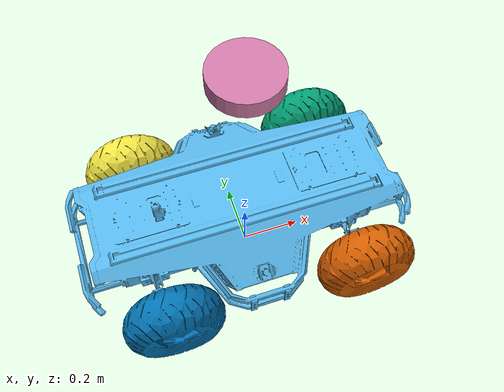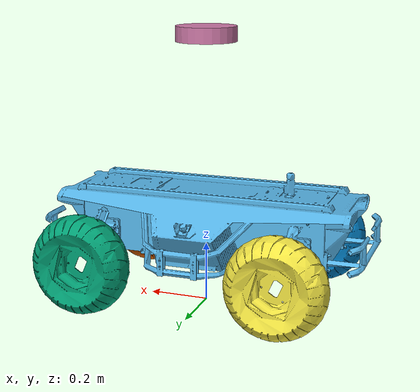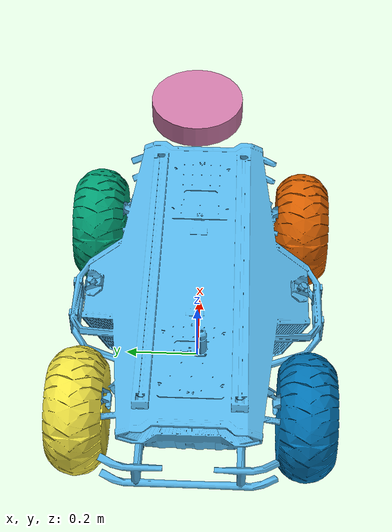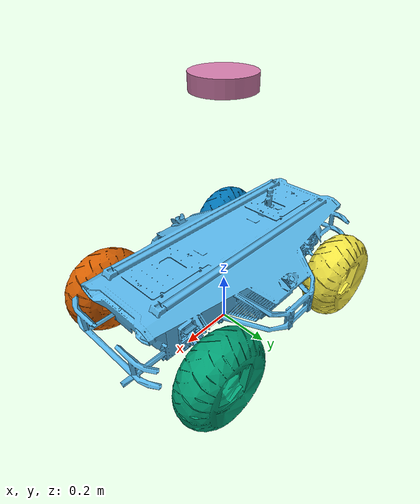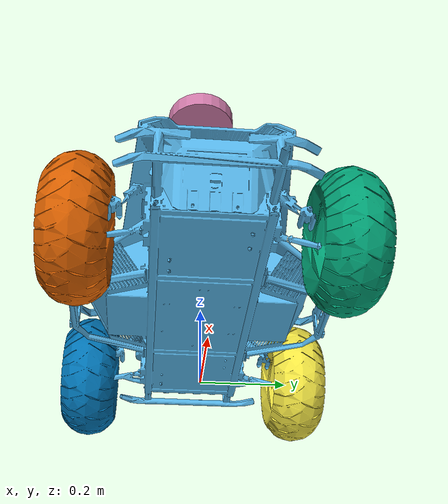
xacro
<?xml version="1.0"?>
<robot name="robot" xmlns:xacro="http://www.ros.org/wiki/xacro">

    <xacro:property name="PI" value="3.1415926535897931"/>
    <xacro:property name="length" value="1.080" />
    <xacro:property name="width" value="0.4" />
    <xacro:property name="height" value="0.336" />
    <xacro:property name="mass" value="48" />
    <xacro:property name="ground" value="0.135" />
    <xacro:property name="wheelrad" value="0.18" />
    <xacro:property name="wheelwid" value="0.10" />
    <xacro:property name="wheeldis" value="0.65" />
    <xacro:property name="wheelseperate" value="0.576" />
    <xacro:property name="wheelmass" value="1" />

    <link name="base_link">
        <visual>
            <origin xyz="0 0 0" rpy="0 0 0"/>
            <geometry>
                <box size="0.001 0.001 0.001"/>
            </geometry>
        </visual>
    </link>

    <joint name="base_joint" type="fixed">
        <origin xyz="0 0 ${height/2+ground}" rpy="0.0 0.0 0.0"/>
        <parent link="base_link"/>
        <child link="chasis"/>
    </joint>

    <link name="chasis">
        <visual>
            <origin xyz="0 0 0" rpy="0.0 0.0 0.0"/>
            <geometry>
                <mesh filename="/home/xyw/BUAA/Graduation/src/scout/description/meshes/Scout_body.stl" />
            </geometry>
        </visual>
        <collision name = 'base_collision'>
            <origin xyz="0 0 0" rpy="0.0 0.0 0.0"/>
            <geometry>
                <box size="${length} ${width} ${height}"/>
            </geometry>
        </collision>
        <inertial>
            <origin xyz="0 0 0" rpy="0.0 0.0 0.0"/>
            <mass value="${mass}"/>
            <inertia
            ixx="${mass / 12.0 * (width*width + height*height)}" ixy="0.0" ixz="0.0"
            iyy="${mass / 12.0 * (height*height + width*width)}" iyz="0.0"
            izz="${mass / 12.0 * (width*width + width*width)}"/>
        </inertial>
    </link>

    <joint name="left_front_joint" type="continuous">
        <parent link="chasis"/>
        <child link="left_front_wheel"/>
        <origin xyz="${wheeldis/2} ${wheelseperate/2} ${-(height/2+ground-wheelrad)}" rpy="0 0 0"/>
        <axis xyz="0 1 0"/>
        <dynamics damping="0.5"/>
      </joint>

    <link name="left_front_wheel">
        <visual>
            <origin xyz="0 0 0" rpy="1.5707 0 0"/>
            <geometry>
                <mesh filename="/home/xyw/BUAA/Graduation/src/scout/description/meshes/tire.stl" />
            </geometry>
        </visual>
        <collision>
            <origin xyz="0 0 0" rpy="1.5707 0 0"/>
            <geometry>
                <cylinder radius="${wheelrad}" length="${wheelwid}"/>
            </geometry>
        </collision>
        <inertial>
            <origin xyz="0 0 0" rpy="1.5707 0 0"/>
            <mass value="${wheelmass}"/>
            <inertia
            ixx="${wheelmass / 12.0 * (3*wheelrad*wheelrad + wheelwid)}" ixy="0.0" ixz="0.0"
            iyy="${ (wheelmass * wheelrad * wheelrad) / 2}" iyz="0.0"
            izz="${wheelmass / 12.0 * (3*wheelrad*wheelrad + wheelwid)}"/>
            </inertial>
    </link>

    <joint name="left_rear_joint" type="continuous">
        <parent link="chasis"/>
        <child link="left_rear_wheel"/>
        <origin xyz="${-wheeldis/2} ${wheelseperate/2} ${-(height/2+ground-wheelrad)}" rpy="0 0 0"/>
        <axis xyz="0 1 0"/>
        <dynamics damping="0.5"/>
      </joint>

    <link name="left_rear_wheel">
        <visual>
            <origin xyz="0 0 0" rpy="1.5707 0 0"/>
            <geometry>
                <mesh filename="/home/xyw/BUAA/Graduation/src/scout/description/meshes/tire.stl" />
            </geometry>
        </visual>
        <collision>
            <origin xyz="0 0 0" rpy="1.5707 0 0"/>
            <geometry>
                <cylinder radius="${wheelrad}" length="${wheelwid}"/>
            </geometry>
        </collision>
        <inertial>
            <origin xyz="0 0 0" rpy="1.5707 0 0"/>
            <mass value="${wheelmass}"/>
            <inertia
            ixx="${wheelmass / 12.0 * (3*wheelrad*wheelrad + wheelwid)}" ixy="0.0" ixz="0.0"
            iyy="${ (wheelmass * wheelrad * wheelrad) / 2}" iyz="0.0"
            izz="${wheelmass / 12.0 * (3*wheelrad*wheelrad + wheelwid)}"/>
            </inertial>
    </link>

    <joint name="right_rear_joint" type="continuous">
        <parent link="chasis"/>
        <child link="right_rear_wheel"/>
        <origin xyz="${-wheeldis/2} ${-wheelseperate/2} ${-(height/2+ground-wheelrad)}" rpy="0 0 0"/>
        <axis xyz="0 1 0"/>
        <dynamics damping="0.5"/>
      </joint>

    <link name="right_rear_wheel">
        <visual>
            <origin xyz="0 0 0" rpy="1.5707 0 0"/>
            <geometry>
                <mesh filename="/home/xyw/BUAA/Graduation/src/scout/description/meshes/tire.stl" />
            </geometry>
        </visual>
        <collision>
            <origin xyz="0 0 0" rpy="1.5707 0 0"/>
            <geometry>
                <cylinder radius="${wheelrad}" length="${wheelwid}"/>
            </geometry>
        </collision>
        <inertial>
            <origin xyz="0 0 0" rpy="1.5707 0 0"/>
            <mass value="${wheelmass}"/>
            <inertia
            ixx="${wheelmass / 12.0 * (3*wheelrad*wheelrad + wheelwid)}" ixy="0.0" ixz="0.0"
            iyy="${ (wheelmass * wheelrad * wheelrad) / 2}" iyz="0.0"
            izz="${wheelmass / 12.0 * (3*wheelrad*wheelrad + wheelwid)}"/>
            </inertial>
    </link>

    <joint name="right_front_joint" type="continuous">
        <parent link="chasis"/>
        <child link="right_front_wheel"/>
        <origin xyz="${wheeldis/2} ${-wheelseperate/2} ${-(height/2+ground-wheelrad)}" rpy="0 0 0"/>
        <axis xyz="0 1 0"/>
        <dynamics damping="0.5"/>
      </joint>

    <link name="right_front_wheel">
        <visual>
            <origin xyz="0 0 0" rpy="1.5707 0 0"/>
            <geometry>
                <mesh filename="/home/xyw/BUAA/Graduation/src/scout/description/meshes/tire.stl" />
            </geometry>
        </visual>
        <collision>
            <origin xyz="0 0 0" rpy="1.5707 0 0"/>
            <geometry>
                <cylinder radius="${wheelrad}" length="${wheelwid}"/>
            </geometry>
        </collision>
        <inertial>
            <origin xyz="0 0 0" rpy="1.5707 0 0"/>
            <mass value="${wheelmass}"/>
            <inertia
            ixx="${wheelmass / 12.0 * (3*wheelrad*wheelrad + wheelwid)}" ixy="0.0" ixz="0.0"
            iyy="${ (wheelmass * wheelrad * wheelrad) / 2}" iyz="0.0"
            izz="${wheelmass / 12.0 * (3*wheelrad*wheelrad + wheelwid)}"/>
            </inertial>
    </link>

    <link name="lidar">
        <visual>
            <origin xyz="0 0 0" rpy="0 0 0"/>
            <geometry>
                <cylinder radius="0.1" length="0.05"/>
            </geometry>
        </visual>
        <collision>
            <origin xyz="0 0 0" rpy="0 0 0"/>
            <geometry>
                <cylinder radius="0.1" length="0.05"/>
            </geometry>
        </collision>
        <inertial>
            <origin xyz="0 0 0" rpy="0 0 0"/>
            <mass value="0.1"/>
            <inertia
            ixx="${0.1 / 12.0 * (3*0.1*0.1 + 0.05)}" ixy="0.0" ixz="0.0"
            iyy="${ (0.1 * 0.1 * 0.1) / 2}" iyz="0.0"
            izz="${0.1 / 12.0 * (3*0.1*0.1 + 0.05)}"/>
            </inertial>
    </link>

    <joint name="lidarfix" type="fixed">
        <origin xyz="0 0 0.6" rpy="0 0 0"/>
        <parent link="chasis"/>
        <child link="lidar"/>
      </joint>

    <gazebo>
        <plugin name="object_controller" filename="libgazebo_ros_planar_move.so">
            <commandTopic>cmd_vel</commandTopic>
            <odometryTopic>odom</odometryTopic>
            <odometryFrame>odom</odometryFrame>
            <odometryRate>20.0</odometryRate>
            <robotBaseFrame>base_link</robotBaseFrame>
        </plugin>
    </gazebo>

    <gazebo reference="base_link">
        <sensor name="contact_sensor" type="contact">
            <always_on>true</always_on>
            <update_rate>20</update_rate>
            <contact>
                <collision>base_link_fixed_joint_lump__base_collision_collision</collision>
            </contact>
            <plugin name="bumper" filename="libgazebo_ros_bumper.so">
                <always_on>true</always_on>
                    <bumperTopicName>bumper</bumperTopicName>
                    <frameName>base_link</frameName>
                <update_rate>20</update_rate>
            </plugin>
        </sensor>
    </gazebo>

    <gazebo reference="left_front_wheel">
        <sensor name="contact_sensor1" type="contact">
            <always_on>true</always_on>
            <update_rate>20</update_rate>
            <contact>
                <collision>left_front_wheel_fixed_joint_lump__base_collision_collision</collision>
            </contact>
            <plugin name="bumper" filename="libgazebo_ros_bumper.so">
                <always_on>true</always_on>
                    <bumperTopicName>bumper</bumperTopicName>
                    <frameName>left_front_wheel</frameName>
                <update_rate>20</update_rate>
            </plugin>
        </sensor>
    </gazebo>
    <gazebo reference="right_front_wheel">
        <sensor name="contact_sensor2" type="contact">
            <always_on>true</always_on>
            <update_rate>20</update_rate>
            <contact>
                <collision>right_front_wheel_fixed_joint_lump__base_collision_collision</collision>
            </contact>
            <plugin name="bumper" filename="libgazebo_ros_bumper.so">
                <always_on>true</always_on>
                    <bumperTopicName>bumper</bumperTopicName>
                    <frameName>base_link</frameName>
                <update_rate>20</update_rate>
            </plugin>
        </sensor>
    </gazebo>
    <gazebo reference="right_rear_wheel">
        <sensor name="contact_sensor3" type="contact">
            <always_on>true</always_on>
            <update_rate>20</update_rate>
            <contact>
                <collision>right_rear_wheel_fixed_joint_lump__base_collision_collision</collision>
            </contact>
            <plugin name="bumper" filename="libgazebo_ros_bumper.so">
                <always_on>true</always_on>
                    <bumperTopicName>bumper</bumperTopicName>
                    <frameName>right_rear_wheel</frameName>
                <update_rate>20</update_rate>
            </plugin>
        </sensor>
    </gazebo>
    <gazebo reference="left_rear_wheel">
        <sensor name="contact_sensor4" type="contact">
            <always_on>true</always_on>
            <update_rate>20</update_rate>
            <contact>
                <collision>left_rear_wheel_fixed_joint_lump__base_collision_collision</collision>
            </contact>
            <plugin name="bumper" filename="libgazebo_ros_bumper.so">
                <always_on>true</always_on>
                    <bumperTopicName>bumper</bumperTopicName>
                    <frameName>left_rear_wheel</frameName>
                <update_rate>20</update_rate>
            </plugin>
        </sensor>
    </gazebo>

    <gazebo reference="lidar">
        <sensor type="ray" name="VLP16">
          <pose>0 0 0 0 0 0</pose>
          <visualize>false</visualize>
          <update_rate>10</update_rate>
          <ray>
            <scan>
              <horizontal>
                <samples>440</samples>
                <resolution>1</resolution>
                <min_angle>-${PI}</min_angle>
                <max_angle>${PI}</max_angle>
              </horizontal>
              <vertical>
                <samples>16</samples>
                <resolution>1</resolution>
                <min_angle>-${15.0*PI/180.0}</min_angle>
                <max_angle> ${15.0*PI/180.0}</max_angle>
              </vertical>
            </scan>
            <range>
              <min>0.2</min>
              <max>131</max>
              <resolution>0.001</resolution>
            </range>
            <noise>
              <type>gaussian</type>
              <mean>0.0</mean>
              <stddev>0.0</stddev>
            </noise>
          </ray>
          <plugin name="gazebo_ros_laser_controller" filename="libgazebo_ros_velodyne_laser.so">
            <topicName>livox/lidar</topicName>
            <frameName>lidar</frameName>
            <min_range>0.2</min_range>
            <max_range>130</max_range>
            <gaussianNoise>0.08</gaussianNoise>
            <always_on>true</always_on>
          </plugin>
        </sensor>
    </gazebo>

</robot>
